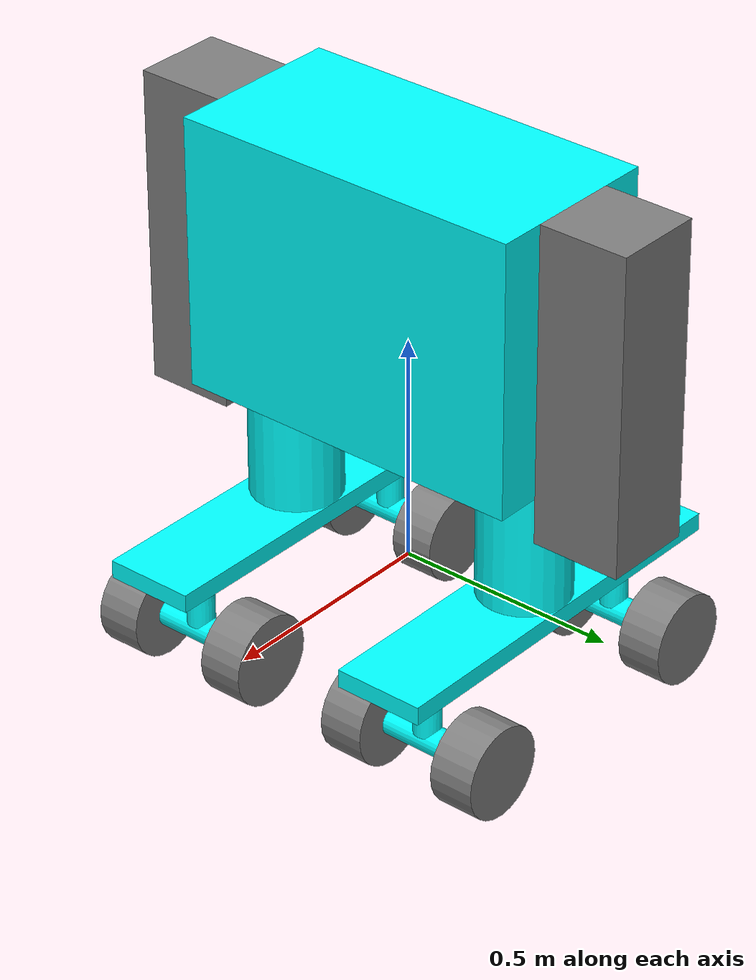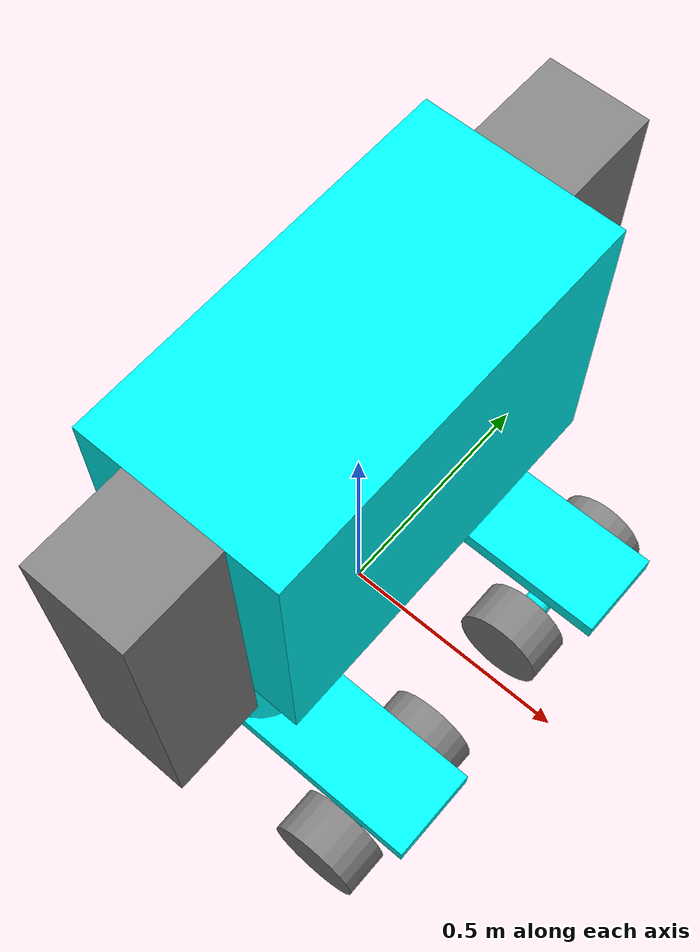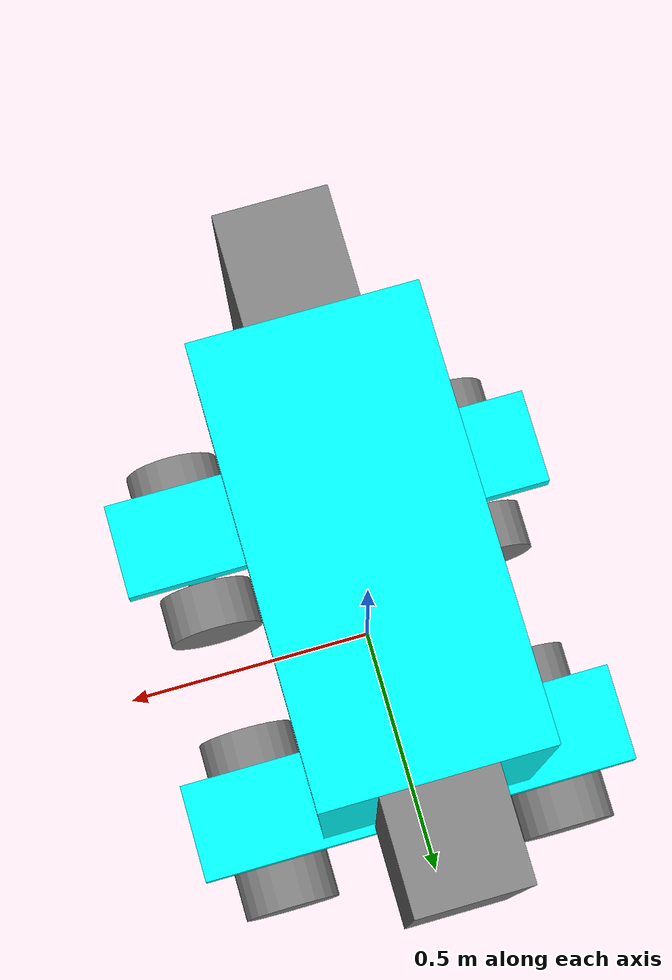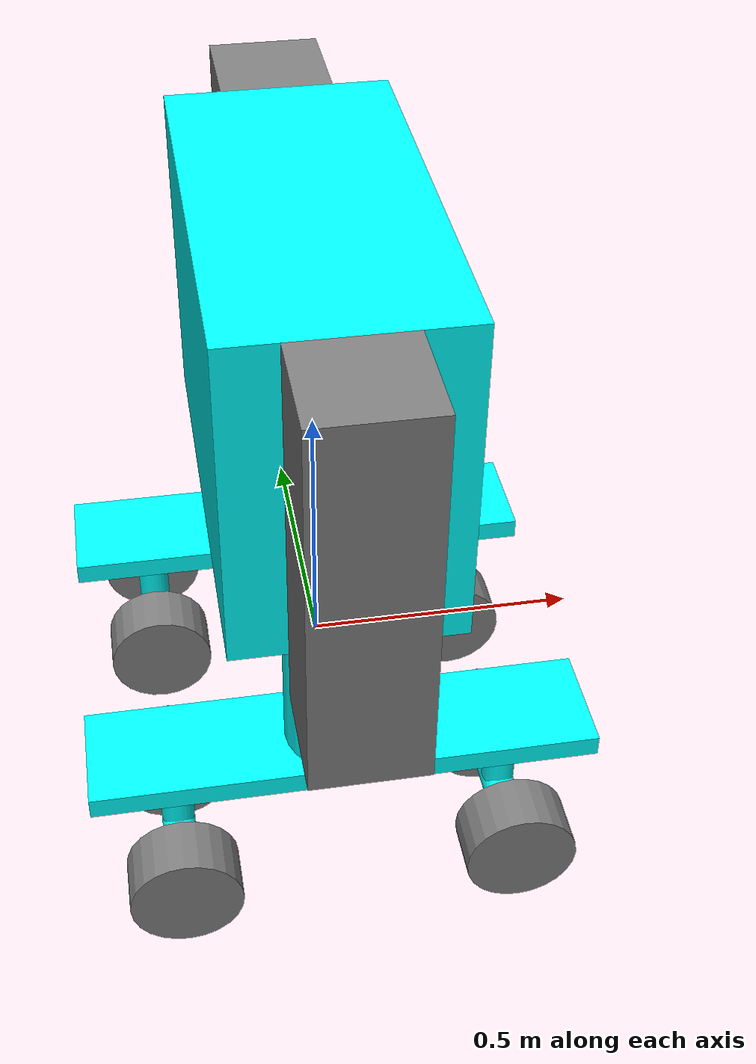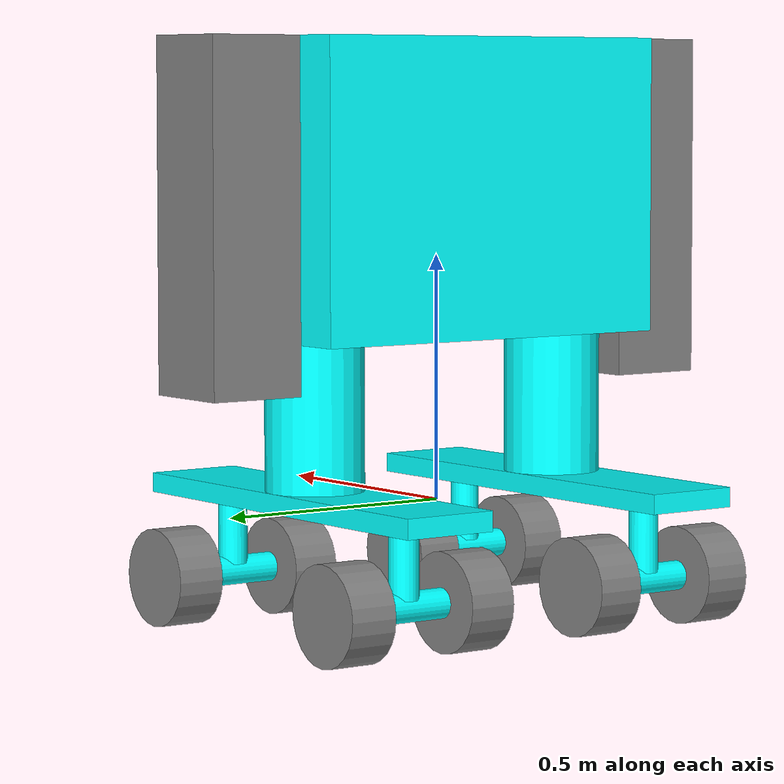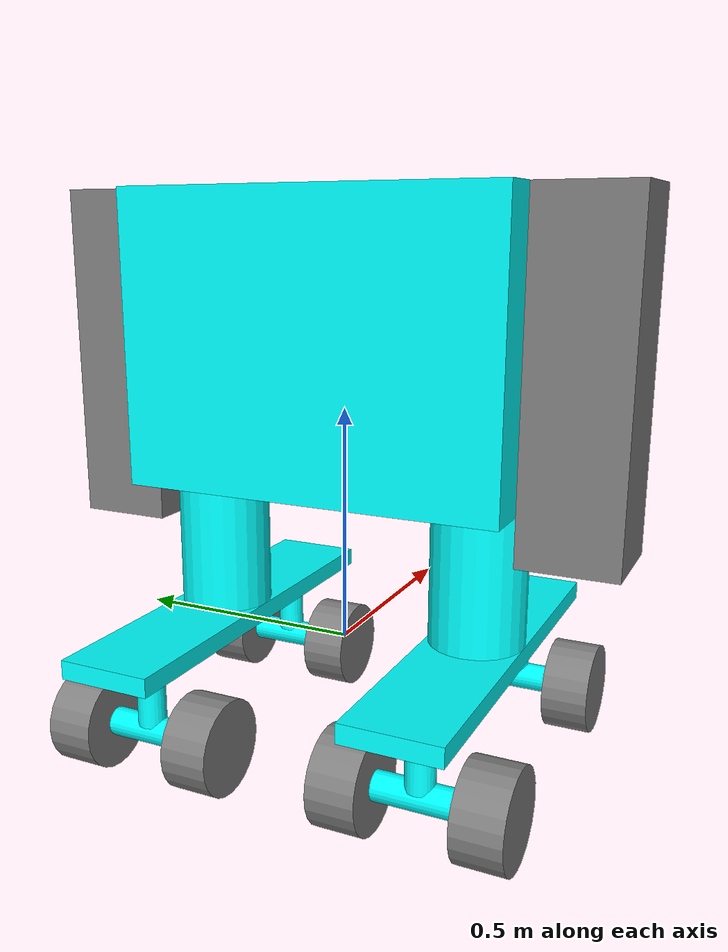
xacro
<?xml version="1.0"?>
<robot name="sam_bot" xmlns:xacro="http://ros.org/wiki/xacro">

  <!-- Define intertial property macros  -->
  <xacro:macro name="box_inertia" params="m w h d">
    <inertial>
      <origin xyz="0 0 0" rpy="${pi/2} 0 ${pi/2}"/>
      <mass value="${m}"/>
      <inertia ixx="${(m/12) * (h*h + d*d)}" ixy="0.0" ixz="0.0" iyy="${(m/12) * (w*w + d*d)}" iyz="0.0" izz="${(m/12) * (w*w + h*h)}"/>
    </inertial>
  </xacro:macro>

  <xacro:macro name="cylinder_inertia" params="m r h">
    <inertial>
      <origin xyz="0 0 0" rpy="${pi/2} 0 0" />
      <mass value="${m}"/>
      <inertia ixx="${(m/12) * (3*r*r + h*h)}" ixy = "0" ixz = "0" iyy="${(m/12) * (3*r*r + h*h)}" iyz = "0" izz="${(m/2) * (r*r)}"/>
    </inertial>
  </xacro:macro>

  <!-- Robot properties -->
  <xacro:property name="scale" value="2.0"/>
  <xacro:property name="chassis_axis_radius" value="${scale*0.015}"/>
  <xacro:property name="chassis_x_offset" value="${scale*0.15}"/>
  <xacro:property name="chassis_y_offset" value="${scale*0.15}"/>
  <xacro:property name="chassis_height" value="${scale*0.07}"/>
  <xacro:property name="platform_len" value="${chassis_x_offset*3}"/>
  <xacro:property name="platform_width" value="${scale*0.1}"/>
  <xacro:property name="platform_height" value="${scale*0.02}"/>
  <xacro:property name="rotation_axis_len" value="${scale*0.09}"/>
  <xacro:property name="wheel_radius" value="${scale*0.05}"/>
  <xacro:property name="wheel_width" value="${scale*0.05}"/>
  <xacro:property name="robot_leg_height" value="${scale*0.15}"/>
  <xacro:property name="robot_leg_radius" value="${scale*0.05}"/>
  <xacro:property name="robot_body_len" value="${scale*0.2}"/>
  <xacro:property name="robot_body_width" value="${chassis_x_offset*8/3}"/>
  <xacro:property name="robot_body_height" value="${scale*0.3}"/>
  <xacro:property name="robot_hand_len" value="${scale*0.35}"/>
  <xacro:property name="robot_hand_width" value="${scale*0.1}"/>

  <!-- Robot Base -->
  <link name="base_link">

    <!-- Robot body-->
    <visual>
      <origin xyz="0 0 ${platform_height+robot_leg_height+robot_body_height/2}" rpy="0 0 0"/>
      <geometry>
        <box size="${robot_body_len} ${robot_body_width} ${robot_body_height}"/>
      </geometry>
      <material name="Cyan">
        <color rgba="0 1.0 1.0 1.0"/>
      </material>
    </visual>

    <!-- Robot legs -->
    <visual>
      <origin xyz="0 ${chassis_y_offset} ${platform_height/2}" rpy="0 0 0"/>
      <geometry>
        <box size="${platform_len} ${platform_width} ${platform_height}"/>
      </geometry>
      <material name="Cyan">
        <color rgba="0 1.0 1.0 1.0"/>
      </material>
    </visual>

    <visual>
      <origin xyz="0 -${chassis_y_offset} ${platform_height/2}" rpy="0 0 0"/>
      <geometry>
        <box size="${platform_len} ${platform_width} ${platform_height}"/>
      </geometry>
      <material name="Cyan">
        <color rgba="0 1.0 1.0 1.0"/>
      </material>
    </visual>

    <visual>
      <origin xyz="0 ${chassis_y_offset} ${robot_leg_height/2+platform_height}" rpy="0 0 0"/>
      <geometry>
        <cylinder length="${robot_leg_height}" radius="${robot_leg_radius}"/>
      </geometry>
      <material name="Cyan">
        <color rgba="0 1.0 1.0 1.0"/>
      </material>
    </visual>

    <visual>
      <origin xyz="0 -${chassis_y_offset} ${robot_leg_height/2+platform_height}" rpy="0 0 0"/>
      <geometry>
        <cylinder length="${robot_leg_height}" radius="${robot_leg_radius}"/>
      </geometry>
      <material name="Cyan">
        <color rgba="0 1.0 1.0 1.0"/>
      </material>
    </visual>

    <!-- Robot chassis -->
    <xacro:macro name="chassis" params="pos_x pos_y">
      <visual>
        <origin xyz="${pos_x*chassis_x_offset} ${pos_y*chassis_y_offset} -${chassis_height/2}" rpy="0 0 0"/>
        <geometry>
          <cylinder length="${chassis_height}" radius="${chassis_axis_radius}"/>
        </geometry>
        <material name="Cyan">
          <color rgba="0 1.0 1.0 1.0"/>
        </material>
      </visual>
    </xacro:macro>

    <xacro:chassis pos_x="1" pos_y="-1"/>
    <xacro:chassis pos_x="1" pos_y="1"/>
    <xacro:chassis pos_x="-1" pos_y="-1"/>
    <xacro:chassis pos_x="-1" pos_y="1"/>

    <!-- Rotation axis -->
    <xacro:macro name="rotation_axis" params="pos_x pos_y">
      <visual>
        <origin xyz="${pos_x*chassis_x_offset} ${pos_y*chassis_y_offset} -${chassis_height+chassis_axis_radius/2}" rpy="${pi/2} 0 0"/>
        <geometry>
          <cylinder length="${rotation_axis_len}" radius="${chassis_axis_radius}"/>
        </geometry>
        <material name="Cyan">
          <color rgba="0 1.0 1.0 1.0"/>
        </material>
      </visual>
    </xacro:macro>

    <xacro:rotation_axis pos_x="1" pos_y="1"/>
    <xacro:rotation_axis pos_x="1" pos_y="-1"/>
    <xacro:rotation_axis pos_x="-1" pos_y="1"/>
    <xacro:rotation_axis pos_x="-1" pos_y="-1"/>

    <xacro:box_inertia m="1.0" w="${robot_body_width}" h="${robot_body_height}" d="${robot_body_len}"/>
  </link>

  <!-- Robot wheels -->

  <xacro:macro name="wheels" params="prefix pos_x pos_y">
    <link name="${prefix}_wheels">
      <visual>
        <origin xyz="0 ${rotation_axis_len/2+wheel_radius/2} 0" rpy="${pi/2} 0 0"/>
        <geometry>
            <cylinder radius="${wheel_radius}" length="${wheel_width}"/>
        </geometry>
        <material name="Gray">
          <color rgba="0.5 0.5 0.5 1.0"/>
        </material>
        <collision>
          <geometry>
              <cylinder radius="${wheel_radius}" length="${wheel_width}"/>
          </geometry>
        </collision>
      </visual>
      <visual>
        <origin xyz="0 -${rotation_axis_len/2+wheel_radius/2} 0" rpy="${pi/2} 0 0"/>
        <geometry>
            <cylinder radius="${wheel_radius}" length="${wheel_width}"/>
        </geometry>
        <material name="Gray">
          <color rgba="0.5 0.5 0.5 1.0"/>
        </material>
        <collision>
          <geometry>
              <cylinder radius="${wheel_radius}" length="${wheel_width}"/>
          </geometry>
        </collision>
      </visual>
      <xacro:cylinder_inertia m="0.2" r="${wheel_radius}" h="${wheel_width}"/>
    </link>
    <joint name="${prefix}_wheels_joint" type="continuous">
      <parent link="base_link"/>
      <child link="${prefix}_wheels"/>
      <origin xyz="${pos_x*chassis_x_offset} ${pos_y*chassis_y_offset} -${chassis_height+chassis_axis_radius/2}" rpy="0 0 0"/>
      <axis xyz="0 1 0"/>
    </joint>
  </xacro:macro>

  <xacro:wheels prefix="left_back" pos_x="-1" pos_y="1"/>
  <xacro:wheels prefix="right_front" pos_x="1" pos_y="-1"/>
  <xacro:wheels prefix="right_back" pos_x="-1" pos_y="-1"/>
  <xacro:wheels prefix="left_front" pos_x="1" pos_y="1"/>

  <!-- Robot hands -->
  <link name="left_hand">
    <visual>
      <origin xyz="0 ${robot_hand_width/2} -${robot_hand_len/2-robot_hand_width/2}" rpy="0 0 0"/>
      <geometry>
          <box size="${robot_hand_width} ${robot_hand_width} ${robot_hand_len}"/>
      </geometry>
      <material name="Gray">
        <color rgba="0.5 0.5 0.5 1.0"/>
      </material>
    </visual>
    <xacro:box_inertia m="0.2" w="${robot_hand_width}" h="${robot_hand_len}" d="${robot_hand_width}"/>
  </link>
  <joint name="left_hand_joint_y" type="continuous">
    <parent link="base_link"/>
    <child link="left_hand"/>
    <origin xyz="0 ${robot_body_width/2} ${platform_height+robot_leg_height+robot_body_height-robot_hand_width/2}" rpy="0 0 0"/>
    <axis xyz="0 1 0"/>
  </joint>

  <link name="right_hand">
    <visual>
      <origin xyz="0 -${robot_hand_width/2} -${robot_hand_len/2-robot_hand_width/2}" rpy="0 0 0"/>
      <geometry>
          <box size="${robot_hand_width} ${robot_hand_width} ${robot_hand_len}"/>
      </geometry>
      <material name="Gray">
        <color rgba="0.5 0.5 0.5 1.0"/>
      </material>
    </visual>
    <xacro:box_inertia m="0.2" w="${robot_hand_width}" h="${robot_hand_len}" d="${robot_hand_width}"/>
  </link>
  <joint name="right_hand_joint_y" type="continuous">
    <parent link="base_link"/>
    <child link="right_hand"/>
    <origin xyz="0 -${robot_body_width/2} ${platform_height+robot_leg_height+robot_body_height-robot_hand_width/2}" rpy="0 0 0"/>
    <axis xyz="0 1 0"/>
  </joint>

  <gazebo>
    <plugin
      filename="gz-sim-diff-drive-system"
      name="gz::sim::systems::DiffDrive">
      <left_joint>left_front_wheels_joint</left_joint>
      <right_joint>right_fron_wheels_joint</right_joint>
      <wheel_separation>0.3</wheel_separation>
      <wheel_radius>${wheel_radius}</wheel_radius>
      <odometry_frame>odom</odometry_frame>
      <robot_base_frame>base_link</robot_base_frame>
      <publish_odom>true</publish_odom>
      <publish_odom_tf>true</publish_odom_tf>
      <odom_publish_frequency>1</odom_publish_frequency>
      <max_linear_acceleration>1</max_linear_acceleration>
      <min_linear_acceleration>-1</min_linear_acceleration>
      <max_angular_acceleration>1</max_angular_acceleration>
      <min_angular_acceleration>-1</min_angular_acceleration>
      <max_linear_velocity>0.5</max_linear_velocity>
      <min_linear_velocity>-0.5</min_linear_velocity>
      <max_angular_velocity>1</max_angular_velocity>
      <min_angular_velocity>-1</min_angular_velocity>
    </plugin>

    <plugin
        filename="gz-sim-joint-state-publisher-system"
        name="gz::sim::systems::JointStatePublisher">
      </plugin>

      <plugin
        filename="gz-sim-pose-publisher-system"
        name="gz::sim::systems::PosePublisher">
        <publish_link_pose>true</publish_link_pose>
        <use_pose_vector_msg>true</use_pose_vector_msg>
        <static_publisher>true</static_publisher>
        <static_update_frequency>1</static_update_frequency>
      </plugin>

      <plugin
        filename="gz-sim-odometry-publisher-system"
        name="gz::sim::systems::OdometryPublisher">
        <odom_frame>roller_robot/odom</odom_frame>
        <robot_base_frame>roller_robot</robot_base_frame>
      </plugin>
  </gazebo>

</robot>
